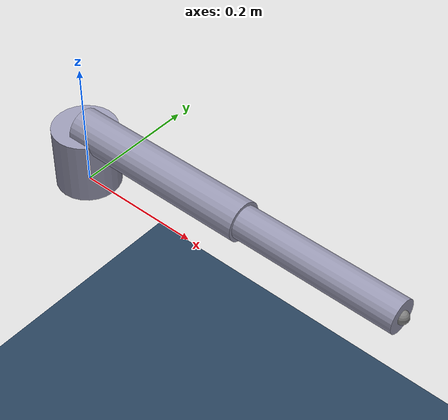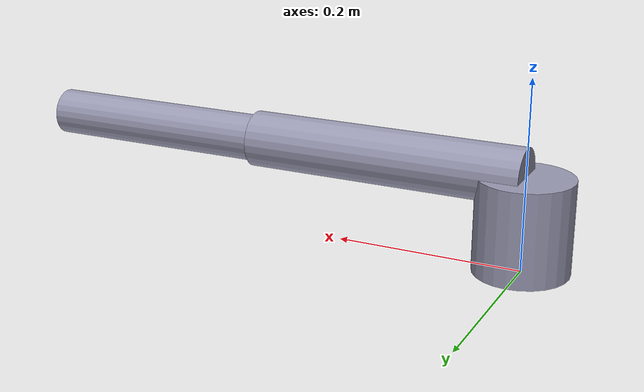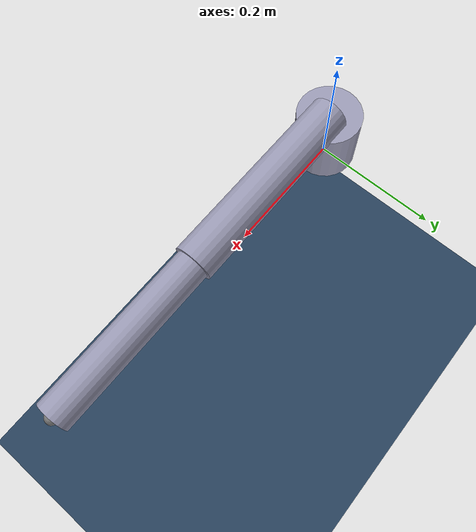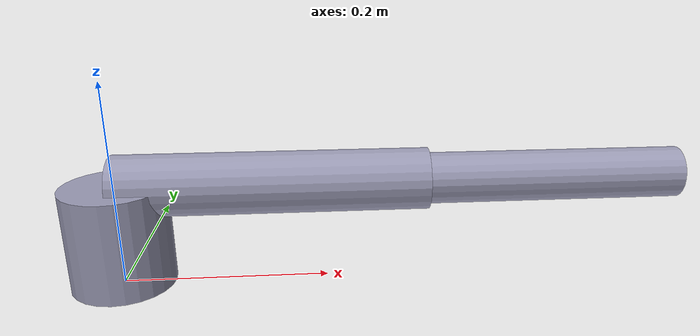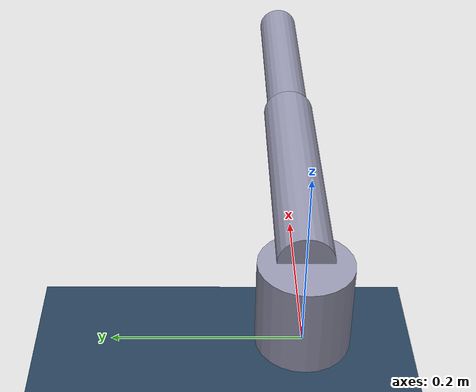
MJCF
<mujoco model="two_link_arm_position">
  <include file="scene.xml"/>

  <default>
    <default class="servo">
      <position kp="50" kv="1"/>
    </default>
  </default>

  <actuator>
    <position name="shoulder_pos" class="servo" joint="shoulder" ctrlrange="-1.5708 1.5708" forcerange="-40 40"/>
    <position name="elbow_pos"    class="servo" joint="elbow"    ctrlrange="-2.3562 2.3562" forcerange="-20 20"/>
  </actuator>

  <sensor>
    <jointpos name="shoulder_q" joint="shoulder"/>
    <actuatorfrc name="shoulder_tau" actuator="shoulder_pos"/>
  </sensor>
</mujoco>

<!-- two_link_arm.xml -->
<mujoco model="two_link_arm">
  <compiler angle="radian" autolimits="true"/>

  <default>
    <default class="arm_joint">
      <joint type="hinge" axis="0 1 0" damping="0.05"/>
    </default>
    <!-- visual: 충돌 없음(contype=conaffinity=0), 질량 계산에서 제외(density 0), 그룹 2 -->
    <default class="visual">
      <geom contype="0" conaffinity="0" group="2" density="0" rgba="0.6 0.6 0.7 1"/>
    </default>
    <!-- collision: 그룹 3, 화면에서는 기본 숨김 -->
    <default class="collision">
      <geom group="3" rgba="0.9 0.4 0.3 0.4"/>
    </default>
    <!-- 링크 원통: x축으로 뻗도록 fromto 사용 (URDF의 rpy="0 1.5708 0" 회전과 같은 결과) -->
  </default>

  <worldbody>
    <!-- base_link: freejoint 없음 → world에 고정 (URDF 루트 링크와 동일) -->
    <body name="base_link">
      <inertial pos="0 0 0.05" mass="2.0" diaginertia="0.0029167 0.0029167 0.0025"/>
      <geom class="visual" type="cylinder" size="0.05 0.05" pos="0 0 0.05"/>

      <body name="link1" pos="0 0 0.10">
        <joint name="shoulder" class="arm_joint" range="-1.5708 1.5708"/>
        <!-- 원통 축이 x 방향 → 주관성 (Iyy, Iyy, Izz)가 아니라 (Izz_cyl, Ixx_cyl, Ixx_cyl) -->
        <inertial pos="0.15 0 0" mass="1.0" diaginertia="0.00045 0.007725 0.007725"/>
        <geom class="visual"    type="cylinder" size="0.03" fromto="0 0 0 0.30 0 0"/>
        <geom class="collision" type="cylinder" size="0.03" fromto="0 0 0 0.30 0 0"/>

        <body name="link2" pos="0.30 0 0">
          <joint name="elbow" class="arm_joint" range="-2.3562 2.3562"/>
          <inertial pos="0.125 0 0" mass="0.6" diaginertia="0.0001875 0.0032188 0.0032188"/>
          <geom class="visual"    type="cylinder" size="0.025" fromto="0 0 0 0.25 0 0"/>
          <geom class="collision" type="cylinder" size="0.025" fromto="0 0 0 0.25 0 0"/>
          <!-- tool0: URDF는 fixed joint + 빈 링크, MJCF는 site 하나로 충분 (fusestatic 영향 없음) -->
          <site name="tool0" pos="0.25 0 0" size="0.01"/>
        </body>
      </body>
    </body>
  </worldbody>
</mujoco>

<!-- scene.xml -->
<!-- week03 화요일: 장면 파일. 로봇 파일은 include 로 분리 (USD reference 와 같은 역할)
     실행: python -m mujoco.viewer --mjcf=members/park-jongjin/week03/mjcf/scene.xml -->
<mujoco model="two_link_arm_scene">
  <include file="two_link_arm.xml"/>

  <option timestep="0.002" integrator="implicitfast" gravity="0 0 -9.81"/>

  <visual>
    <global azimuth="90" elevation="-10"/>
  </visual>

  <asset>
    <texture name="grid" type="2d" builtin="checker" rgb1="0.2 0.3 0.4" rgb2="0.1 0.2 0.3" width="512" height="512"/>
    <material name="grid" texture="grid" texrepeat="4 4" reflectance="0.1"/>
  </asset>

  <!-- worldbody 를 한 번 더 써도 된다: include 된 파일의 worldbody 와 합쳐짐 -->
  <worldbody>
    <light pos="0 -1 1.5" dir="0 1 -1"/>
    <geom name="floor" type="plane" size="1 1 0.05" material="grid" pos="0 0 -0.6"/>
  </worldbody>
</mujoco>
